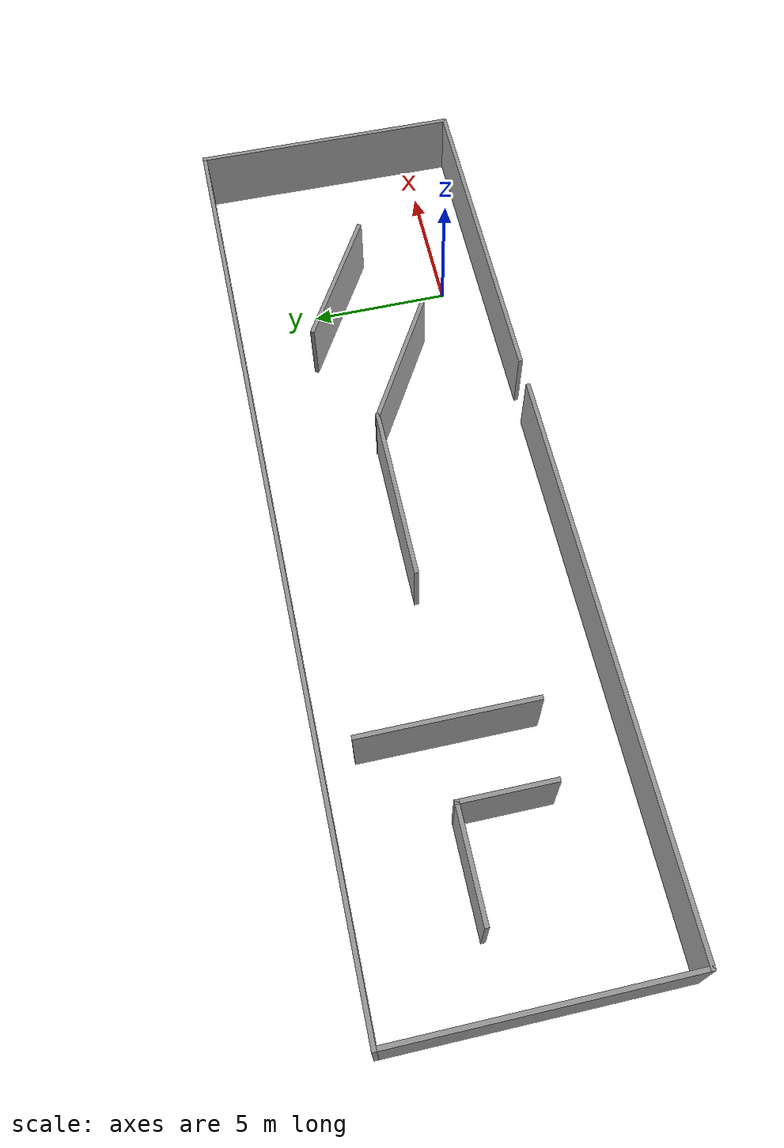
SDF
<?xml version='1.0'?>
<sdf version='1.7'>
  <model name='environment'>
    <pose>-9.77255 3.23039 0 0 -0 0</pose>
    <link name='Wall_1'>
      <collision name='Wall_1_Collision'>
        <geometry>
          <box>
            <size>12 0.15 2.5</size>
          </box>
        </geometry>
        <pose>0 0 1.25 0 -0 0</pose>
      </collision>
      <visual name='Wall_1_Visual'>
        <pose>0 0 1.25 0 -0 0</pose>
        <geometry>
          <box>
            <size>12 0.15 2.5</size>
          </box>
        </geometry>
        <material>
          <script>
            <uri>file://media/materials/scripts/gazebo.material</uri>
            <name>Gazebo/Grey</name>
          </script>
          <ambient>1 1 1 1</ambient>
        </material>
        <meta>
          <layer>0</layer>
        </meta>
      </visual>
      <pose>10.5 -4.8 0 0 -0 0</pose>
    </link>
    <link name='Wall_10'>
      <collision name='Wall_10_Collision'>
        <geometry>
          <box>
            <size>5.25 0.15 2.5</size>
          </box>
        </geometry>
        <pose>0 0 1.25 0 -0 0</pose>
      </collision>
      <visual name='Wall_10_Visual'>
        <pose>0 0 1.25 0 -0 0</pose>
        <geometry>
          <box>
            <size>5.25 0.15 2.5</size>
          </box>
        </geometry>
        <material>
          <script>
            <uri>file://media/materials/scripts/gazebo.material</uri>
            <name>Gazebo/Grey</name>
          </script>
          <ambient>1 1 1 1</ambient>
        </material>
        <meta>
          <layer>0</layer>
        </meta>
      </visual>
      <pose>5.57112 -0.677592 0 0 -0 -0.523599</pose>
    </link>
    <link name='Wall_12'>
      <collision name='Wall_12_Collision'>
        <geometry>
          <box>
            <size>5.25 0.15 2.5</size>
          </box>
        </geometry>
        <pose>0 0 1.25 0 -0 0</pose>
      </collision>
      <visual name='Wall_12_Visual'>
        <pose>0 0 1.25 0 -0 0</pose>
        <geometry>
          <box>
            <size>5.25 0.15 2.5</size>
          </box>
        </geometry>
        <material>
          <script>
            <uri>file://media/materials/scripts/gazebo.material</uri>
            <name>Gazebo/Grey</name>
          </script>
          <ambient>1 1 1 1</ambient>
        </material>
        <meta>
          <layer>0</layer>
        </meta>
      </visual>
      <pose>9.60261 0.870273 0 0 -0 -0.523599</pose>
    </link>
    <link name='Wall_14'>
      <collision name='Wall_14_Collision'>
        <geometry>
          <box>
            <size>3.75 0.15 2.5</size>
          </box>
        </geometry>
        <pose>0 0 1.25 0 -0 0</pose>
      </collision>
      <visual name='Wall_14_Visual'>
        <pose>0 0 1.25 0 -0 0</pose>
        <geometry>
          <box>
            <size>3.75 0.15 2.5</size>
          </box>
        </geometry>
        <material>
          <script>
            <uri>file://media/materials/scripts/gazebo.material</uri>
            <name>Gazebo/Grey</name>
          </script>
          <ambient>1 1 1 1</ambient>
        </material>
        <meta>
          <layer>0</layer>
        </meta>
      </visual>
      <pose>-12.1593 1.05473 0 0 -0 0</pose>
    </link>
    <link name='Wall_15'>
      <collision name='Wall_15_Collision'>
        <geometry>
          <box>
            <size>3.25 0.15 2.5</size>
          </box>
        </geometry>
        <pose>0 0 1.25 0 -0 0</pose>
      </collision>
      <visual name='Wall_15_Visual'>
        <pose>0 0 1.25 0 -0 0</pose>
        <geometry>
          <box>
            <size>3.25 0.15 2.5</size>
          </box>
        </geometry>
        <material>
          <script>
            <uri>file://media/materials/scripts/gazebo.material</uri>
            <name>Gazebo/Grey</name>
          </script>
          <ambient>1 1 1 1</ambient>
        </material>
        <meta>
          <layer>0</layer>
        </meta>
      </visual>
      <pose>-10.3593 -0.495268 0 0 -0 -1.5708</pose>
    </link>
    <link name='Wall_2'>
      <collision name='Wall_2_Collision'>
        <geometry>
          <box>
            <size>9.75 0.15 2.5</size>
          </box>
        </geometry>
        <pose>0 0 1.25 0 -0 0</pose>
      </collision>
      <visual name='Wall_2_Visual'>
        <pose>0 0 1.25 0 -0 0</pose>
        <geometry>
          <box>
            <size>9.75 0.15 2.5</size>
          </box>
        </geometry>
        <material>
          <script>
            <uri>file://media/materials/scripts/gazebo.material</uri>
            <name>Gazebo/Grey</name>
          </script>
          <ambient>1 1 1 1</ambient>
        </material>
        <meta>
          <layer>0</layer>
        </meta>
      </visual>
      <pose>16.425 -0 0 0 -0 1.5708</pose>
    </link>
    <link name='Wall_3'>
      <collision name='Wall_3_Collision'>
        <geometry>
          <box>
            <size>33 0.15 2.5</size>
          </box>
        </geometry>
        <pose>0 0 1.25 0 -0 0</pose>
      </collision>
      <visual name='Wall_3_Visual'>
        <pose>0 0 1.25 0 -0 0</pose>
        <geometry>
          <box>
            <size>33 0.15 2.5</size>
          </box>
        </geometry>
        <material>
          <script>
            <uri>file://media/materials/scripts/gazebo.material</uri>
            <name>Gazebo/Grey</name>
          </script>
          <ambient>1 1 1 1</ambient>
        </material>
        <meta>
          <layer>0</layer>
        </meta>
      </visual>
      <pose>-0 4.8 0 0 -0 3.14159</pose>
    </link>
    <link name='Wall_4'>
      <collision name='Wall_4_Collision'>
        <geometry>
          <box>
            <size>9.75 0.15 2.5</size>
          </box>
        </geometry>
        <pose>0 0 1.25 0 -0 0</pose>
      </collision>
      <visual name='Wall_4_Visual'>
        <pose>0 0 1.25 0 -0 0</pose>
        <geometry>
          <box>
            <size>9.75 0.15 2.5</size>
          </box>
        </geometry>
        <material>
          <script>
            <uri>file://media/materials/scripts/gazebo.material</uri>
            <name>Gazebo/Grey</name>
          </script>
          <ambient>1 1 1 1</ambient>
        </material>
        <meta>
          <layer>0</layer>
        </meta>
      </visual>
      <pose>-16.425 -0 0 0 -0 -1.5708</pose>
    </link>
    <link name='Wall_5'>
      <collision name='Wall_5_Collision'>
        <geometry>
          <box>
            <size>20 0.15 2.5</size>
          </box>
        </geometry>
        <pose>0 0 1.25 0 -0 0</pose>
      </collision>
      <visual name='Wall_5_Visual'>
        <pose>0 0 1.25 0 -0 0</pose>
        <geometry>
          <box>
            <size>20 0.15 2.5</size>
          </box>
        </geometry>
        <material>
          <script>
            <uri>file://media/materials/scripts/gazebo.material</uri>
            <name>Gazebo/Grey</name>
          </script>
          <ambient>1 1 1 1</ambient>
        </material>
        <meta>
          <layer>0</layer>
        </meta>
      </visual>
      <pose>-6.5 -4.8 0 0 -0 0</pose>
    </link>
    <link name='Wall_7'>
      <collision name='Wall_7_Collision'>
        <geometry>
          <box>
            <size>6 0.15 2.5</size>
          </box>
        </geometry>
        <pose>0 0 1.25 0 -0 0</pose>
      </collision>
      <visual name='Wall_7_Visual'>
        <pose>0 0 1.25 0 -0 0</pose>
        <geometry>
          <box>
            <size>6 0.15 2.5</size>
          </box>
        </geometry>
        <material>
          <script>
            <uri>file://media/materials/scripts/gazebo.material</uri>
            <name>Gazebo/Grey</name>
          </script>
          <ambient>1 1 1 1</ambient>
        </material>
        <meta>
          <layer>0</layer>
        </meta>
      </visual>
      <pose>-7.76781 0.708107 0 0 -0 1.5708</pose>
    </link>
    <link name='Wall_9'>
      <collision name='Wall_9_Collision'>
        <geometry>
          <box>
            <size>6.25 0.15 2.5</size>
          </box>
        </geometry>
        <pose>0 0 1.25 0 -0 0</pose>
      </collision>
      <visual name='Wall_9_Visual'>
        <pose>0 0 1.25 0 -0 0</pose>
        <geometry>
          <box>
            <size>6.25 0.15 2.5</size>
          </box>
        </geometry>
        <material>
          <script>
            <uri>file://media/materials/scripts/gazebo.material</uri>
            <name>Gazebo/Grey</name>
          </script>
          <ambient>1 1 1 1</ambient>
        </material>
        <meta>
          <layer>0</layer>
        </meta>
      </visual>
      <pose>0.312757 0.597408 0 0 -0 0</pose>
    </link>
    <static>1</static>
  </model>
</sdf>
